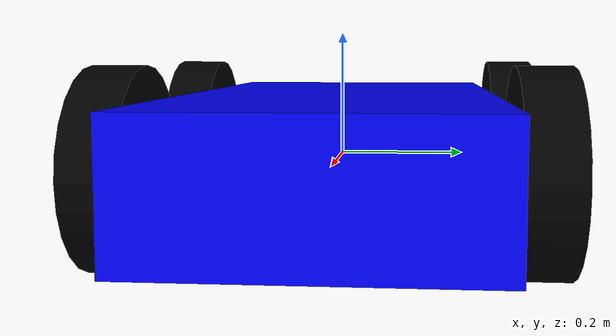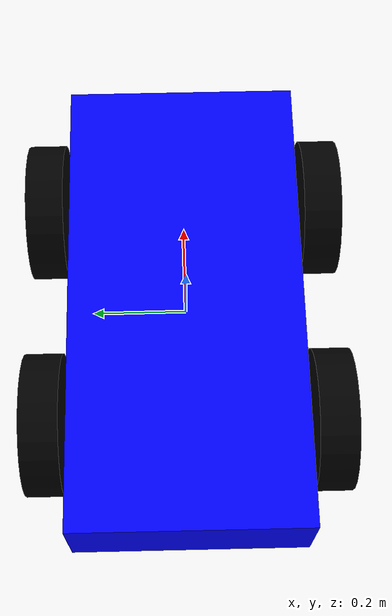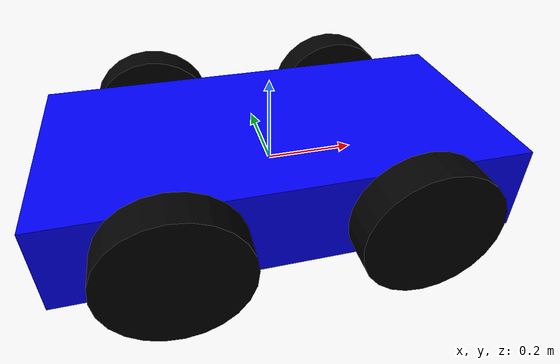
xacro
<?xml version="1.0"?>
<robot name="ackermann_robot" xmlns:xacro="http://www.ros.org/wiki/xacro">

<!-- Include xacro-->
<xacro:include filename="$(find custom_ackermann_steering_controller_ros)/urdf/common_macro.xacro" />
<xacro:include filename="$(find custom_ackermann_steering_controller_ros)/urdf/corpus.xacro" />
<xacro:include filename="$(find custom_ackermann_steering_controller_ros)/urdf/wheel.xacro" />

<!-- constants -->
<xacro:property name="PI" value="3.14"/>

<xacro:property name="corpus_len" value="1.0"/>
<xacro:property name="corpus_width" value="0.5"/>
<xacro:property name="corpus_height" value="0.2"/>
<xacro:property name="corpus_mass" value="5"/>

<xacro:property name="wheel_radius" value="0.15"/>
<xacro:property name="wheel_width" value="0.08"/>
<xacro:property name="wheel_mass" value="0.5"/>

<xacro:property name="angle_wheel_limit" value="${PI/4}"/>

<xacro:corpus
    link_name="base_link"
    length="${corpus_len}"
    width="${corpus_width}"
    height="${corpus_height}"
    mass="${corpus_mass}" />

<xacro:wheel
    link_name="front_left_wheel"
    radius="${wheel_radius}"
    length="${wheel_width}"
    mass="${wheel_mass}"/>

<xacro:wheel
    link_name="front_right_wheel"
    radius="${wheel_radius}"
    length="${wheel_width}"
    mass="${wheel_mass}"/>

<xacro:wheel
    link_name="rear_left_wheel"
    radius="${wheel_radius}"
    length="${wheel_width}"
    mass="${wheel_mass}"/>

<xacro:wheel
    link_name="rear_right_wheel"
    radius="${wheel_radius}"
    length="${wheel_width}"
    mass="${wheel_mass}"/>

  <!-- Суставы для соединения передних колес с корпусом -->
  <joint name="front_left_wheel_joint" type="revolute">
    <parent link="base_link"/>
    <child link="front_left_wheel"/>
    <origin xyz="0.25 0.3 0" rpy="0 0 0"/>
    <axis xyz="0 0 1"/>
    <limit lower="${-angle_wheel_limit}" upper="${angle_wheel_limit}" effort="1000" velocity="1"/>
  </joint>

  <joint name="front_right_wheel_joint" type="revolute">
    <parent link="base_link"/>
    <child link="front_right_wheel"/>
    <origin xyz="0.25 -0.3 0" rpy="0 0 0"/>
    <axis xyz="0 0 1"/>
    <limit lower="${-angle_wheel_limit}" upper="${angle_wheel_limit}" effort="1000" velocity="1"/>
  </joint>

  <!-- Суставы для соединения задних колес с корпусом (без поворота) -->
  <joint name="rear_left_wheel_joint" type="continuous">
    <parent link="base_link"/>
    <child link="rear_left_wheel"/>
    <origin xyz="-0.25 0.3 0" rpy="0 0 0"/>
    <axis xyz="0 1 0"/>
  </joint>

  <joint name="rear_right_wheel_joint" type="continuous">
    <parent link="base_link"/>
    <child link="rear_right_wheel"/>
    <origin xyz="-0.25 -0.3 0" rpy="0 0 0"/>
    <axis xyz="0 1 0"/>
  </joint>

  <!-- Трансмиссия для переднего левого управляемого колеса -->
  <xacro:Front_transmission joint_name="front_left_wheel_joint"/>

  <!-- Трансмиссия для переднего правого управляемого колеса -->
  <xacro:Front_transmission joint_name="front_right_wheel_joint"/>

  <!-- Трансмиссия для заднего левого ведущего колеса -->
  <xacro:Back_transmission joint_name="rear_left_wheel_joint"/>

  <!-- Трансмиссия для заднего правого ведущего колеса -->
  <xacro:Back_transmission joint_name="rear_right_wheel_joint"/>

  <gazebo reference="front_left_wheel">
    <mu1>0.0</mu1>
    <mu2>0.0</mu2>
  </gazebo>

  <gazebo reference="front_right_wheel">
    <mu1>0.0</mu1>
    <mu2>0.0</mu2>
  </gazebo>

  <gazebo>
        <plugin name="gazebo_ros_control" filename="libgazebo_ros_control.so">
            <robotNamespace>/</robotNamespace>
        </plugin>
    </gazebo>
</robot>

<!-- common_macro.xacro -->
<robot name="common_macro" xmlns:xacro="http://www.ros.org/wiki/xacro">

<!-- Константы -->
<xacro:property name="PI" value="3.14"/>

<!-- Cilinder inertial -->
<xacro:macro name="cylinder_inertia" params ="m r h">
  <inertial>
   <mass value="${m}"/>
   <inertia ixx="${m*(3*r*r+h*h)/12}"  ixy="0.0" ixz="0.0"
            iyy="${m*(3*r*r+h*h)/12}"  iyz="0.0" izz="${m*r*r/2}"/>
   </inertial>
</xacro:macro>

<!-- Base inertial matrix -->
<xacro:macro name= "inertial_matrix" params="mass">
  <inertial>
    <mass value="${mass}"/>
    <inertia
        ixx="1.0" ixy="0.0"
        iyy="1.0" iyz="0.0"
        izz="1.0" ixz="0.0"/>
   </inertial>
 </xacro:macro>

<!--Transmission front -->
<xacro:macro name="Front_transmission" params="joint_name">
    <transmission name="${joint_name}_transmission">
        <type>transmission_interface/SimpleTransmission</type>
        <joint name="${joint_name}">
          <hardwareInterface>hardware_interface/PositionJointInterface</hardwareInterface>
        </joint>
        <actuator name="${joint_name}_actuator">
          <hardwareInterface>hardware_interface/PositionJointInterface</hardwareInterface>
          <mechanicalReduction>1</mechanicalReduction>
        </actuator>
      </transmission>
</xacro:macro>

<!-- Transmission back -->
<xacro:macro name="Back_transmission" params="joint_name">
    <transmission name="${joint_name}_transmission">
        <type>transmission_interface/SimpleTransmission</type>
        <joint name="${joint_name}">
          <hardwareInterface>hardware_interface/VelocityJointInterface</hardwareInterface>
        </joint>
        <actuator name="${joint_name}_actuator">
          <hardwareInterface>hardware_interface/VelocityJointInterface</hardwareInterface>
          <mechanicalReduction>1</mechanicalReduction>
        </actuator>
      </transmission>
</xacro:macro>
</robot>

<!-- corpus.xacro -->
<robot name="corpus" xmlns:xacro="http://www.ros.org/wiki/xacro">

<xacro:include filename="$(find custom_ackermann_steering_controller_ros)/urdf/common_macro.xacro" />

<xacro:macro
    name="corpus"
    params="
        link_name
        length
        width
        height
        mass">
    <link name="${link_name}">
        <visual>
            <origin
                rpy= "0 0 0"
                xyz= "0 0 0"/>
            <geometry>
                <box size="${length} ${width} ${height}"/>
            </geometry>
            <material name="Blue">
                <color rgba="0.0 0.0 1.0 1.0"/>
            </material>
        </visual>
        <collision>
             <origin
                rpy= "0 0 0"
                xyz= "0 0 0"/>
            <geometry>
                <box size="${length} ${width} ${height}"/>
            </geometry>
        </collision>
        <xacro:inertial_matrix mass="${mass}"/>
    </link>

    <gazebo reference ="${link_name}">
        <material>Gazebo/Blue</material>
    </gazebo>
</xacro:macro>
</robot>

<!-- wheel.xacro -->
<robot name="wheel" xmlns:xacro="http://www.ros.org/wiki/xacro">

<xacro:include filename="$(find custom_ackermann_steering_controller_ros)/urdf/common_macro.xacro" />

<xacro:macro
    name="wheel"
    params="
        link_name
        radius
        length
        mass">
    <link name="${link_name}">
        <visual>
            <origin rpy="${PI/2} 0 0" xyz="0 0 0"/>
            <geometry>
                <cylinder length="${length}" radius="${radius}"/>
            </geometry>
            <material name="Black">
                <color rgba="0.0 0.0 0.0 0.9"/>
            </material>
        </visual>
        <collision>
            <origin rpy="${PI/2} 0 0" xyz="0 0 0"/>
            <geometry>
                <cylinder length="${length}" radius="${radius}"/>
            </geometry>
        </collision>
        <xacro:cylinder_inertia m="${mass}" r="${radius}" h="${length}"/>
    </link>
    <gazebo reference ="${link_name}">
        <material>Gazebo/Black</material>
    </gazebo>
</xacro:macro>
</robot>
